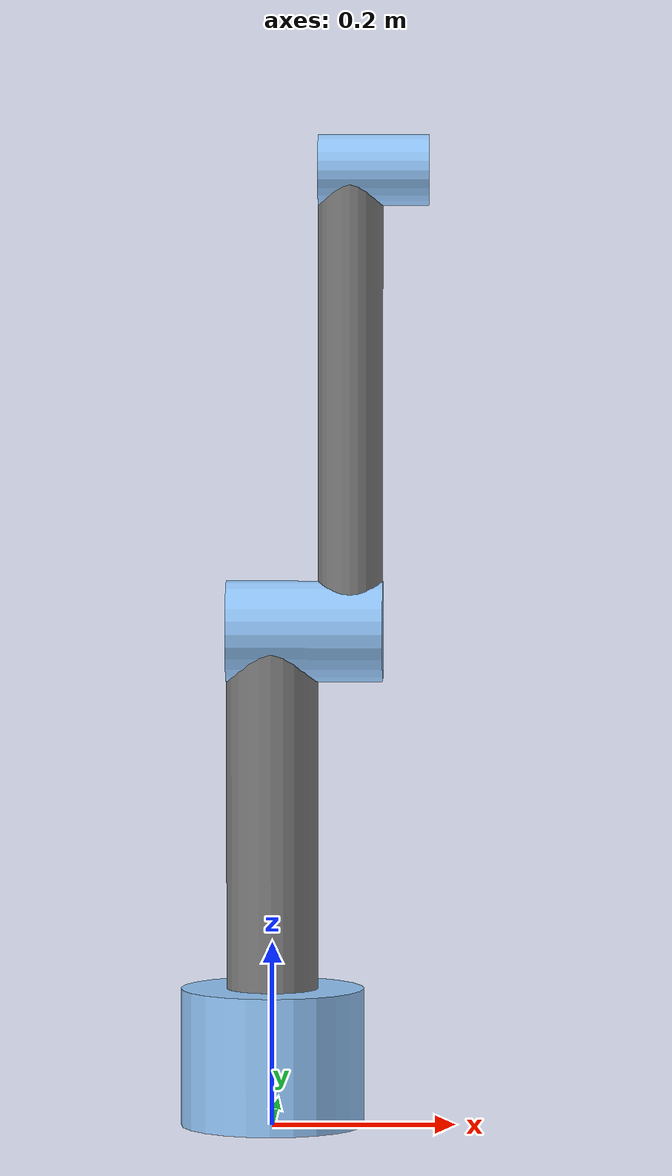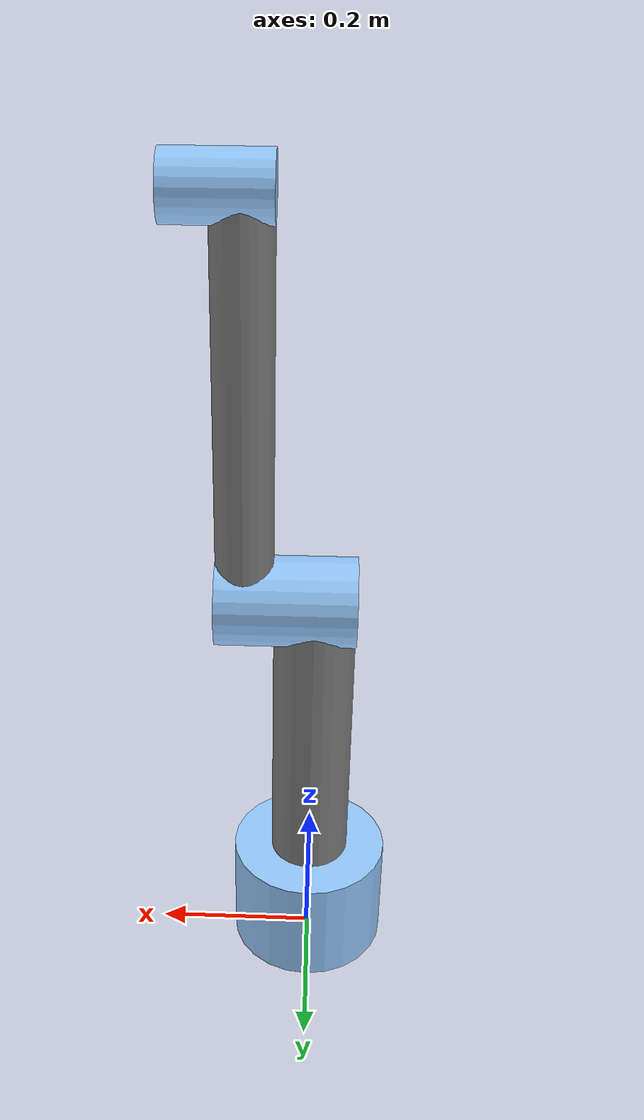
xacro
<?xml version="1.0" ?>

<robot xmlns:xacro="http://ros.org/wiki/xacro" name="ar3_robot">
  <xacro:arg name="prefix" default="" />

  <!-- Serial hardware arguments -->
  <xacro:arg name="serial_device" default="" />
  <xacro:arg name="serial_baudrate" default="" />
  <xacro:arg name="firmware_version" default="" />

  <!-- Simulation arguments -->
  <xacro:arg name="sim_gazebo" default="false" />
  <xacro:arg name="use_fake_hardware" default="false"/>
  <xacro:arg name="fake_sensor_commands" default="false"/>

  <!-- include AR3 macro -->
  <xacro:include filename="$(find ar3_description)/urdf/ar3_description.urdf.xacro" />

  <!-- include materials / colors -->
  <xacro:include filename="$(find ar3_description)/gazebo/ar3.materials.xacro" />

  <!-- include gazebo / colors -->
  <xacro:include filename="$(find ar3_description)/gazebo/ar3.gazebo.xacro"/>
  <xacro:ar3_gazebo
    prefix="$(arg prefix)"
    sim_gazebo="$(arg sim_gazebo)"/>

  <!-- include AR3 ros2_control description -->
  <xacro:include filename="$(find ar3_description)/ros2_control/ar3.ros2_control.xacro" />

  <!-- Instantiate AR3 robot -->
  <xacro:ar3 prefix="$(arg prefix)"></xacro:ar3>

  <xacro:ar3_ros2_control
      name="ar3"
      prefix="$(arg prefix)"
      serial_device="$(arg serial_device)"
      serial_baudrate="$(arg serial_baudrate)"
      firmware_version="$(arg firmware_version)"
      sim_gazebo="$(arg sim_gazebo)"
      use_fake_hardware="$(arg use_fake_hardware)"
      fake_sensor_commands="$(arg fake_sensor_commands)"
      />

</robot>

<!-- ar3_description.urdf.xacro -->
<!-- Make the namespace of the robot-->
<robot xmlns:xacro="http://www.ros.org/wiki/xacro" name="ar3_robot">

    <xacro:macro name="ar3"  params="prefix">

    <!--Define constants-->
    <xacro:property name="link_type" value="cuboidal" />
    <xacro:property name="M_PI" value="3.14159"/>

    <xacro:property name="mass_1" value="20" />
    <xacro:property name="mass_2" value="10" />
    <xacro:property name="mass_3" value="1" />

    <xacro:property name="radius_1" value="0.1" />  <!--base_link radius-->
    <xacro:property name="radius_2" value="0.05" /> <!--link1 radius-->
    <xacro:property name="radius_3" value="0.035" /><!--link2 radius-->
    <xacro:property name="radius_4" value="0.025" /><!--link3 radius-->

    <xacro:property name="length_1" value="0.15" /> <!--base_link length-->
    <xacro:property name="length_2" value="0.4" />  <!--link1 length-->
    <xacro:property name="length_3" value="0.5" />  <!--link2 length-->

    <!--Define Rviz colors-->

    <!-- macros for inertia -->
    <xacro:macro name="inertial_block" params="mass length radius">
        <inertial>
        <origin xyz="0 0 ${length/2}" rpy="0 0 0"/>
        <mass value="${mass}"/>
        <inertia
            ixx="${mass / 12.0 * (2*radius*2*radius + length*length)}" ixy="0.0" ixz="0.0"
            iyy="${mass / 12.0 * (length*length + 2*radius*2*radius)}" iyz="0.0"
            izz="${mass / 12.0 * (2*radius*2*radius + 2*radius*2*radius)}" />
    </inertial>
    </xacro:macro>

    <!-- macros for transmission -->
    <xacro:macro name="transmission_block" params="joint_name">
	  <transmission name="tran1">
	    <type>transmission_interface/SimpleTransmission</type>
	    <joint name="${joint_name}">
	      <hardwareInterface>hardware_interface/PositionJointInterface</hardwareInterface>
	    </joint>
	    <actuator name="motor1">
	      <hardwareInterface>hardware_interface/PositionJointInterface</hardwareInterface>
	      <mechanicalReduction>1</mechanicalReduction>
	    </actuator>
	  </transmission>
   </xacro:macro>

    <!--Define Gazebo colors-->
    <xacro:macro name="gazebo_grey_link_color_block" params="link_name">
    <gazebo reference="${link_name}">
    <visual>
      <material>
        <ambient>0.5 0.5 0.5 1.0</ambient>
        <diffuse>0.56666695 0.56666695 0.56666695 1.0</diffuse>
        <specular>0.6000003 0.6000003 0.6000003 1.0</specular>
      </material>
    </visual>
    </gazebo>
  </xacro:macro>

  <xacro:macro name="gazebo_blue_link_color_block" params="link_name">
    <gazebo reference="${link_name}">
    <visual>
      <material>
        <ambient>0.589 0.793 1.0 1.0</ambient>
        <diffuse>0.56666695 0.56666695 0.56666695 1.0</diffuse>
        <specular>0.6000003 0.6000003 0.6000003 1.0</specular>
      </material>
    </visual>
    </gazebo>
  </xacro:macro>

    <!--world link-->
    <link name="world"/>

    <joint name="world_joint" type="fixed">
        <origin xyz="0.0 0.0 0.0" rpy="0.0 0.0 0.0"/>
        <parent link="world"/>
        <child link="base_link"/>
    </joint>

    <!--base_link-->
    <link name="base_link">
        <xacro:inertial_block mass="${mass_1}" length="${length_1}" radius="${radius_1}"/>
        <visual>
            <origin xyz="0.0 0.0 ${length_1/2.0}" rpy="0.0 0.0 0.0"/>
            <geometry>
                <cylinder radius="${radius_1}" length="${length_1}"/>
            </geometry>
            <material name="LightBlue"/>
        </visual>

        <collision>
            <origin xyz="0.0 0.0 ${length_1/2.0}" rpy="0.0 0.0 0.0"/>
            <geometry>
                <cylinder radius="${radius_1}" length="${length_1}"/>
            </geometry>
        </collision>
    </link>
    <xacro:gazebo_blue_link_color_block link_name="base_link"/>

    <joint name="joint1" type="revolute">
        <origin xyz="0.0 0.0 ${length_1}" rpy="0.0 0.0 0.0"/>
        <parent link="base_link"/>
        <child link="link1"/>
        <axis xyz="0.0 0.0 1"/>
        <limit lower="0.0" upper="${M_PI * 2}" effort="300.0" velocity="1.0"/>
    </joint>

    <!--link1-->
    <link name="link1">
        <xacro:inertial_block mass="${mass_2}" length="${length_2}" radius="${radius_2}"/>
        <visual>
            <origin xyz="0.0 0.0 ${length_2/2.0}" rpy="0.0 0.0 0.0"/>
            <geometry>
                <cylinder radius="${radius_2}" length="${length_2}"/>
            </geometry>
            <material name="Grey"/>
        </visual>
        <collision>
            <origin xyz="0.0 0.0 ${length_2/2.0}" rpy="0.0 0.0 0.0"/>
            <geometry>
                <cylinder radius="${radius_2}" length="${length_2}"/>
            </geometry>
        </collision>
    </link>
    <xacro:gazebo_grey_link_color_block link_name="link1"/>

    <joint name="link1_endjoint" type="fixed">
        <origin xyz="${-radius_2} 0.0 ${length_2 - 0.01}" rpy="0.0 ${M_PI/2.0} 0.0"/>
        <parent link="link1"/>
        <child link="link1_endlink"/>
    </joint>
    <gazebo reference="link1_endjoint">
        <disableFixedJointLumping>true</disableFixedJointLumping>
        <preserveFixedJoint>true</preserveFixedJoint>
    </gazebo>

    <link name="link1_endlink">
        <xacro:inertial_block mass="${mass_2/3.0}" length="${2*radius_2+2*radius_3}" radius="${radius_2}"/>
        <visual>
            <origin xyz="0.0 0.0 ${(2*radius_2+2*radius_3)/2.0}" rpy="0.0 0.0 0.0"/>
            <geometry>
                <cylinder radius="${radius_2*1.1}" length="${2*radius_2+2*radius_3}"/>
            </geometry>
            <material name="LightBlue"/>
        </visual>
        <collision>
            <origin xyz="0.0 0.0 ${(2*radius_2+2*radius_3)/2.0}" rpy="0.0 0.0 0.0"/>
            <geometry>
                <cylinder radius="${radius_2*1.1}" length="${2*radius_2+2*radius_3}"/>
            </geometry>
        </collision>
    </link>
    <xacro:gazebo_blue_link_color_block link_name="link1_endlink"/>

    <joint name="joint2" type="revolute">
        <origin xyz="${radius_2 + radius_3} 0.0 ${length_2}" rpy="0.0 0.0 0.0"/>
        <parent link="link1"/>
        <child link="link2"/>
        <axis xyz="1.0 0.0 0.0"/>
        <limit effort="300.0" lower="-1.1" upper="1.1" velocity="1.0"/>
    </joint>

    <!--link2-->
    <link name="link2">
        <xacro:inertial_block mass="${mass_3}" length="${length_3}" radius="${radius_3}"/>
        <visual>
            <origin xyz="0.0 0.0 ${length_3/2.0}" rpy="0.0 0.0 0.0"/>
            <geometry>
                <cylinder radius="${radius_3}" length="${length_3}"/>
            </geometry>
            <material name="Grey"/>
        </visual>
        <collision>
            <origin xyz="0.0 0.0 ${length_3/2.0}" rpy="0.0 0.0 0.0"/>
            <geometry>
                <cylinder radius="${radius_3}" length="${length_3}"/>
            </geometry>
        </collision>
    </link>
    <xacro:gazebo_grey_link_color_block link_name="link2"/>

    <joint name="link2_endjoint" type="fixed">
        <origin xyz="${-radius_3} 0.0 ${length_3 - 0.01}" rpy="0.0 ${M_PI/2.0} 0.0"/>
        <parent link="link2"/>
        <child link="link2_endlink"/>
    </joint>
    <gazebo reference="link2_endjoint">
        <disableFixedJointLumping>true</disableFixedJointLumping>
        <preserveFixedJoint>true</preserveFixedJoint>
    </gazebo>

    <link name="link2_endlink">
        <xacro:inertial_block mass="${mass_3/3.0}" length="${2*radius_3+2*radius_4}" radius="${radius_3}"/>
        <visual>
            <origin xyz="0.0 0.0 ${(2*radius_3+2*radius_4)/2.0}" rpy="0.0 0.0 0.0"/>
            <geometry>
                <cylinder radius="${radius_3*1.1}" length="${2*radius_3+2*radius_4}"/>
            </geometry>
            <material name="LightBlue"/>
        </visual>
        <collision>
            <origin xyz="0.0 0.0 ${(2*radius_3+2*radius_4)/2.0}" rpy="0.0 0.0 0.0"/>
            <geometry>
                <cylinder radius="${radius_3*1.1}" length="${2*radius_3+2*radius_4}"/>
            </geometry>
        </collision>
    </link>
    <xacro:gazebo_blue_link_color_block link_name="link2_endlink"/>

    <!-- Transmissions for ros control -->
    <xacro:transmission_block joint_name="joint1"/>
    <xacro:transmission_block joint_name="joint2"/>

    </xacro:macro>

</robot>

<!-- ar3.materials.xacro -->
<robot xmlns:xacro="http://ros.org/wiki/xacro">

  <!-- Init colour -->

  <material name="Black">
      <color rgba="0.0 0.0 0.0 1.0"/>
  </material>

  <material name="Red">
      <color rgba="0.8 0.0 0.0 1.0"/>
  </material>

  <material name="Blue">
      <color rgba="0.0 0.0 1.0 1.0"/>
  </material>

  <material name="LightBlue">
      <color rgba="0.589 0.793 1.0 1.0"/>
  </material>

  <material name="Grey">
      <color rgba="0.5 0.5 0.5 1.0"/>
  </material>

  <material name="White">
      <color rgba="1.0 1.0 1.0 1.0"/>
  </material>

  <material name="dark">
    <color rgba="0.3 0.3 0.3 1.0"/>
  </material>

  <material name="light_black">
    <color rgba="0.4 0.4 0.4 1.0"/>
  </material>

  <material name="Green">
    <color rgba="0.0 0.8 0.0 1.0"/>
  </material>

  <material name="orange">
    <color rgba="${255/255} ${108/255} ${10/255} 1.0"/>
  </material>

  <material name="brown">
    <color rgba="${222/255} ${207/255} ${195/255} 1.0"/>
  </material>

</robot>
